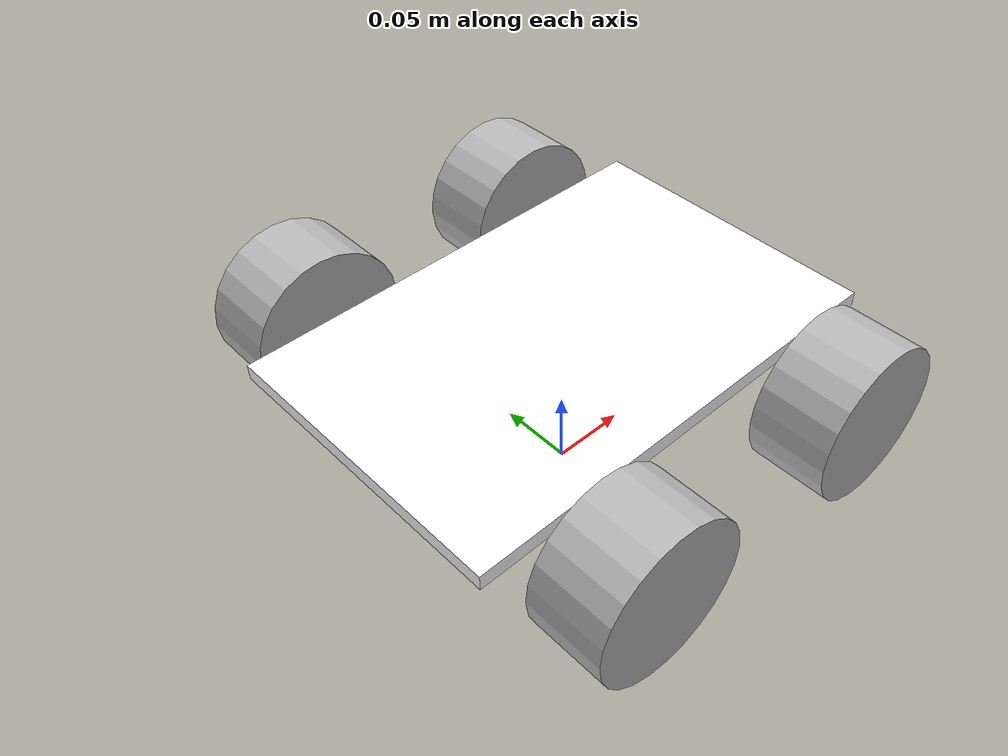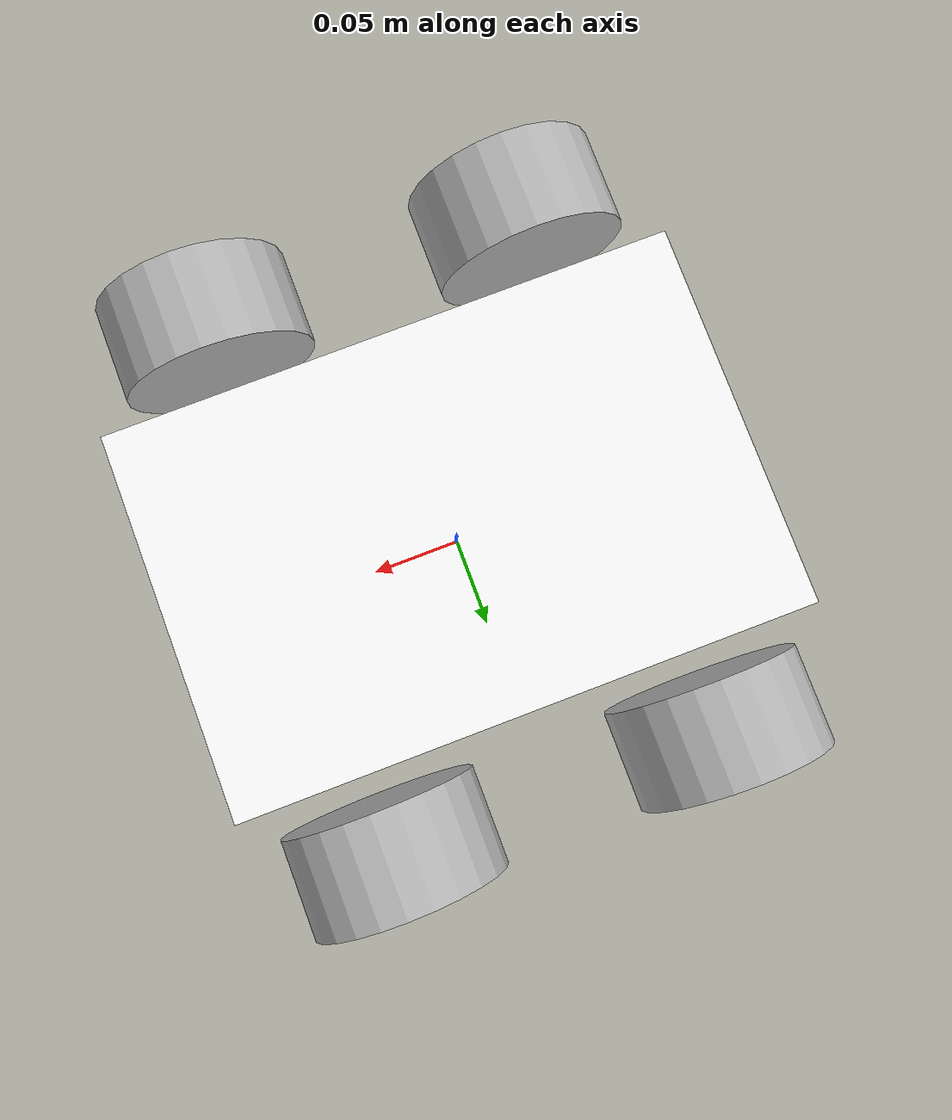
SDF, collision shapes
<?xml version="1.0" ?>

<sdf version='1.9'>
  <model name='robot'>
    <link name='base_footprint'>
      <inertial>
        <pose>0 0 0.08000000000000002 0 0 0</pose>
        <mass>20</mass>
        <inertia>
          <ixx>2.133</ixx>
          <ixy>0</ixy>
          <ixz>0</ixz>
          <iyy>4.266</iyy>
          <iyz>0</iyz>
          <izz>5.5460000000000003</izz>
        </inertia>
      </inertial>
      <collision name='base_footprint_fixed_joint_lump__base_link_collision'>
        <pose>0 0 0.105 0 0 0</pose>
        <geometry>
          <box>
            <size>0.3 0.2 0.01</size>
          </box>
        </geometry>
        <surface>
          <contact>
            <ode/>
          </contact>
          <friction>
            <ode/>
          </friction>
        </surface>
      </collision>

      <visual name='base_footprint_fixed_joint_lump__base_link_visual'>
        <pose>0 0 0.105 0 0 0</pose>
        <geometry>
          <box>
            <size>0.3 0.2 0.005</size>
          </box>
        </geometry>
        <material>
          <diffuse>1 1 1 1</diffuse>
          <ambient>1 1 1 1</ambient>
        </material>
      </visual>
      <visual name='base_footprint_fixed_joint_lump__base_link_visual_1'>
        <pose>0.1 0 0.125 0 0 0</pose>
        <geometry>
          <box>
            <size>0.07 0.076 0.03</size>
          </box>
        </geometry>
      </visual>
      <visual name='base_footprint_fixed_joint_lump__lidar_link_visual_2'>
        <pose>0.1 0 0.23 0 0 0</pose>
        <geometry>
          <cylinder>
            <length>0.070000000000000007</length>
            <radius>0.040000000000000001</radius>
          </cylinder>
        </geometry>
        <material>
          <diffuse>0 0 0 1</diffuse>
          <ambient>0 0 0 1</ambient>
        </material>
      </visual>
      <visual name='base_footprint_fixed_joint_lump__rgbd_frame_visual_3'>
        <pose>0.18 0 0.14 0 0 0</pose>
        <geometry>
          <box>
            <size>0.02 0.07 0.03</size>
          </box>
        </geometry>
        <material>
          <diffuse>1 1 1 1</diffuse>
          <ambient>1 1 1 1</ambient>
        </material>
      </visual>

      <sensor name='imu_sensor' type='imu'>
        <always_on>true</always_on>
        <update_rate>50</update_rate>
        <visualize>false</visualize>
        <topic>imu</topic>
        <imu>
          <enable_orientation>false</enable_orientation>
          <angular_velocity>
            <x>
              <noise type='gaussian'>
                <mean>0</mean>
                <stddev>0.0089999999999999993</stddev>
                <bias_mean>0.00075000000000000002</bias_mean>
                <bias_stddev>0.0050000000000000001</bias_stddev>
                <dynamic_bias_stddev>2.0000000000000002e-05</dynamic_bias_stddev>
                <dynamic_bias_correlation_time>400</dynamic_bias_correlation_time>
                <precision>0.00025000000000000001</precision>
              </noise>
            </x>
            <y>
              <noise type='gaussian'>
                <mean>0</mean>
                <stddev>0.0089999999999999993</stddev>
                <bias_mean>0.00075000000000000002</bias_mean>
                <bias_stddev>0.0050000000000000001</bias_stddev>
                <dynamic_bias_stddev>2.0000000000000002e-05</dynamic_bias_stddev>
                <dynamic_bias_correlation_time>400</dynamic_bias_correlation_time>
                <precision>0.00025000000000000001</precision>
              </noise>
            </y>
            <z>
              <noise type='gaussian'>
                <mean>0</mean>
                <stddev>0.0089999999999999993</stddev>
                <bias_mean>0.00075000000000000002</bias_mean>
                <bias_stddev>0.0050000000000000001</bias_stddev>
                <dynamic_bias_stddev>2.0000000000000002e-05</dynamic_bias_stddev>
                <dynamic_bias_correlation_time>400</dynamic_bias_correlation_time>
                <precision>0.00025000000000000001</precision>
              </noise>
            </z>
          </angular_velocity>
          <linear_acceleration>
            <x>
              <noise type='gaussian'>
                <mean>0</mean>
                <stddev>0.021000000000000001</stddev>
                <bias_mean>0.050000000000000003</bias_mean>
                <bias_stddev>0.0074999999999999997</bias_stddev>
                <dynamic_bias_stddev>0.00037500000000000001</dynamic_bias_stddev>
                <dynamic_bias_correlation_time>175</dynamic_bias_correlation_time>
                <precision>0.0050000000000000001</precision>
              </noise>
            </x>
            <y>
              <noise type='gaussian'>
                <mean>0</mean>
                <stddev>0.021000000000000001</stddev>
                <bias_mean>0.050000000000000003</bias_mean>
                <bias_stddev>0.0074999999999999997</bias_stddev>
                <dynamic_bias_stddev>0.00037500000000000001</dynamic_bias_stddev>
                <dynamic_bias_correlation_time>175</dynamic_bias_correlation_time>
                <precision>0.0050000000000000001</precision>
              </noise>
            </y>
            <z>
              <noise type='gaussian'>
                <mean>0</mean>
                <stddev>0.021000000000000001</stddev>
                <bias_mean>0.050000000000000003</bias_mean>
                <bias_stddev>0.0074999999999999997</bias_stddev>
                <dynamic_bias_stddev>0.00037500000000000001</dynamic_bias_stddev>
                <dynamic_bias_correlation_time>175</dynamic_bias_correlation_time>
                <precision>0.0050000000000000001</precision>
              </noise>
            </z>
          </linear_acceleration>
        </imu>
        <pose>0 0 0.08 0 -0 0</pose>
        <ignition_frame_id>base_link</ignition_frame_id>
      </sensor>

      <sensor name='gpu_lidar' type='gpu_lidar'>
        <update_rate>10</update_rate>
        <ray>
          <scan>
            <horizontal>
              <samples>360</samples>
              <resolution>1</resolution>
              <min_angle>-2.1000000000000001</min_angle>
              <max_angle>2.1000000000000001</max_angle>
            </horizontal>
          </scan>
          <range>
            <min>0.10000000000000001</min>
            <max>40</max>
            <resolution>0.017453</resolution>
          </range>
          <noise>
            <type>gaussian</type>
            <mean>0</mean>
            <stddev>0.01</stddev>
          </noise>
        </ray>
        <visualize>false</visualize>
        <topic>lidar</topic>
        <pose>0.1 0 0.23 0 -0 0</pose>
        <ignition_frame_id>lidar_link</ignition_frame_id>
        <alwaysOn>1</alwaysOn>
      </sensor>

      <sensor name='rgbd_camera' type='rgbd_camera'>
        <camera name='rgbd_frame'>
          <horizontal_fov>1.0471999999999999</horizontal_fov>
          <lens>
            <intrinsics>
              <fx>277.10000000000002</fx>
              <fy>277.10000000000002</fy>
              <cx>160.5</cx>
              <cy>120.5</cy>
              <s>0</s>
            </intrinsics>
            <type>stereographic</type>
            <scale_to_hfov>true</scale_to_hfov>
          </lens>
          <distortion>
            <k1>0</k1>
            <k2>0</k2>
            <k3>0</k3>
            <p1>0</p1>
            <p2>0</p2>
            <center>0.5 0.5</center>
          </distortion>
          <image>
            <width>320</width>
            <height>240</height>
            <format>R8G8B8</format>
          </image>
          <clip>
            <near>0.01</near>
            <far>300</far>
          </clip>
          <depth_camera>
            <clip>
              <near>0.10000000000000001</near>
              <far>10</far>
            </clip>
            <output>depths</output>
          </depth_camera>
          <noise>
            <type>gaussian</type>
            <mean>0</mean>
            <stddev>0.0040000000000000001</stddev>
          </noise>
        </camera>
        <always_on>true</always_on>
        <update_rate>10</update_rate>
        <visualize>false</visualize>
        <topic>depth_camera</topic>
        <pose>0.18 0 0.14 0 -0 0</pose>
        <ignition_frame_id>rgbd_frame</ignition_frame_id>
      </sensor>
    </link>
    <joint name='leftback_joint' type='revolute'>
      <pose relative_to='base_footprint'>-0.08500000000000001 0.14 0.09 -1.570796325 0 0</pose>
      <parent>base_footprint</parent>
      <child>leftback_link</child>
      <axis>
        <xyz>0 0 1</xyz>
        <limit>
          <lower>-10000000000000000</lower>
          <upper>10000000000000000</upper>
        </limit>
        <dynamics>
          <spring_reference>0</spring_reference>
          <spring_stiffness>0</spring_stiffness>
        </dynamics>
      </axis>
    </joint>
    <link name='leftback_link'>
      <pose relative_to='leftback_joint'>0 0 0 0 0 0</pose>
      <inertial>
        <pose>0 0 0 0 0 0</pose>
        <mass>0.10000000000000001</mass>
        <inertia>
          <ixx>6.0999999999999999e-05</ixx>
          <ixy>0</ixy>
          <ixz>0</ixz>
          <iyy>6.0999999999999999e-05</iyy>
          <iyz>0</iyz>
          <izz>6.0999999999999999e-05</izz>
        </inertia>
      </inertial>
      <collision name='leftback_link_collision'>
        <pose>0 0 0 0 0 0</pose>
        <geometry>
          <cylinder>
            <length>0.050000000000000003</length>
            <radius>0.050000000000000003</radius>
          </cylinder>
        </geometry>
      </collision>
      <visual name='leftback_link_visual'>
        <pose>0 0 0 -1.570796325 0 0</pose>
        <geometry>
          <mesh>
            <scale>1 0.8 1</scale>
            <uri>model://rp_nav2/meshes/right_mecanum_wheel.dae</uri>
          </mesh>
        </geometry>
      </visual>
    </link>

    <joint name='leftfront_joint' type='revolute'>
      <pose relative_to='base_footprint'>0.08500000000000001 0.14 0.09 -1.570796325 0 0</pose>
      <parent>base_footprint</parent>
      <child>leftfront_link</child>
      <axis>
        <xyz>0 0 1</xyz>
        <limit>
          <lower>-10000000000000000</lower>
          <upper>10000000000000000</upper>
        </limit>
        <dynamics>
          <spring_reference>0</spring_reference>
          <spring_stiffness>0</spring_stiffness>
        </dynamics>
      </axis>
    </joint>

    <link name='leftfront_link'>
      <pose relative_to='leftfront_joint'>0 0 0 0 0 0</pose>
      <inertial>
        <pose>0 0 0 0 0 0</pose>
        <mass>0.10000000000000001</mass>
        <inertia>
          <ixx>6.0999999999999999e-05</ixx>
          <ixy>0</ixy>
          <ixz>0</ixz>
          <iyy>6.0999999999999999e-05</iyy>
          <iyz>0</iyz>
          <izz>6.0999999999999999e-05</izz>
        </inertia>
      </inertial>
      <collision name='leftfront_link_collision'>
        <pose>0 0 0 0 0 0</pose>
        <geometry>
          <cylinder>
            <length>0.050000000000000003</length>
            <radius>0.050000000000000003</radius>
          </cylinder>
        </geometry>
      </collision>
      <visual name='leftfront_link_visual'>
        <pose>0 0 0 -1.570796325 0 0</pose>
        <geometry>
          <mesh>
            <scale>1 0.8 1</scale>
            <uri>model://rp_nav2/meshes/left_mecanum_wheel.dae</uri>
          </mesh>
        </geometry>
      </visual>
    </link>
    <joint name='rightback_joint' type='revolute'>
      <pose relative_to='base_footprint'>-0.08500000000000001 -0.14 0.09 -1.570796325 0 0</pose>
      <parent>base_footprint</parent>
      <child>rightback_link</child>
      <axis>
        <xyz>0 0 1</xyz>
        <limit>
          <lower>-10000000000000000</lower>
          <upper>10000000000000000</upper>
        </limit>
        <dynamics>
          <spring_reference>0</spring_reference>
          <spring_stiffness>0</spring_stiffness>
        </dynamics>
      </axis>
    </joint>

    <link name='rightback_link'>
      <pose relative_to='rightback_joint'>0 0 0 0 0 0</pose>
      <inertial>
        <pose>0 0 0 0 0 0</pose>
        <mass>0.10000000000000001</mass>
        <inertia>
          <ixx>6.0999999999999999e-05</ixx>
          <ixy>0</ixy>
          <ixz>0</ixz>
          <iyy>6.0999999999999999e-05</iyy>
          <iyz>0</iyz>
          <izz>6.0999999999999999e-05</izz>
        </inertia>
      </inertial>
      <collision name='rightback_link_collision'>
        <pose>0 0 0 0 0 0</pose>
        <geometry>
          <cylinder>
            <length>0.050000000000000003</length>
            <radius>0.050000000000000003</radius>
          </cylinder>
        </geometry>
      </collision>
      <visual name='rightback_link_visual'>
        <pose>0 0 0 -1.570796325 0 0</pose>
        <geometry>
          <mesh>
            <scale>1 0.8 1</scale>
            <uri>model://rp_nav2/meshes/left_mecanum_wheel.dae</uri>
          </mesh>
        </geometry>
      </visual>
    </link>

    <joint name='rightfront_joint' type='revolute'>
      <pose relative_to='base_footprint'>0.08500000000000001 -0.14 0.09 -1.570796325 0 0</pose>
      <parent>base_footprint</parent>
      <child>rightfront_link</child>
      <axis>
        <xyz>0 0 1</xyz>
        <limit>
          <lower>-10000000000000000</lower>
          <upper>10000000000000000</upper>
        </limit>
        <dynamics>
          <spring_reference>0</spring_reference>
          <spring_stiffness>0</spring_stiffness>
        </dynamics>
      </axis>
    </joint>
    <link name='rightfront_link'>
      <pose relative_to='rightfront_joint'>0 0 0 0 0 0</pose>
      <inertial>
        <pose>0 0 0 0 0 0</pose>
        <mass>0.10000000000000001</mass>
        <inertia>
          <ixx>6.0999999999999999e-05</ixx>
          <ixy>0</ixy>
          <ixz>0</ixz>
          <iyy>6.0999999999999999e-05</iyy>
          <iyz>0</iyz>
          <izz>6.0999999999999999e-05</izz>
        </inertia>
      </inertial>
      <collision name='rightfront_link_collision'>
        <pose>0 0 0 0 0 0</pose>
        <geometry>
          <cylinder>
            <length>0.050000000000000003</length>
            <radius>0.050000000000000003</radius>
          </cylinder>
        </geometry>
      </collision>
      <visual name='rightfront_link_visual'>
        <pose>0 0 0 -1.570796325 0 0</pose>
        <geometry>
          <mesh>
            <scale>1 0.8 1</scale>
            <uri>model://rp_nav2/meshes/right_mecanum_wheel.dae</uri>
          </mesh>
        </geometry>
      </visual>
    </link>

    <plugin name='ignition::gazebo::systems::MecanumDrive' filename='ignition-gazebo-mecanum-drive-system'>
      <front_left_joint>leftfront_joint</front_left_joint>
      <front_right_joint>rightfront_joint</front_right_joint>
      <back_left_joint>leftback_joint</back_left_joint>
      <back_right_joint>rightback_joint</back_right_joint>
      <wheel_separation>0.085</wheel_separation>
      <wheelbase>0.14</wheelbase>
      <wheel_radius>0.05</wheel_radius>
      <min_acceleration>-5</min_acceleration>
      <max_acceleration>5</max_acceleration>
    </plugin>

    <plugin name='ignition::gazebo::systems::OdometryPublisher' filename='ignition-gazebo-odometry-publisher-system'>
      <dimensions>3</dimensions>
      <robot_base_frame>base_footprint</robot_base_frame>
    </plugin>

    <plugin name='ignition::gazebo::systems::JointStatePublisher' filename='ignition-gazebo-joint-state-publisher-system'/>

    <frame name='lidar_joint' attached_to='base_link'>
      <pose>0.1 0 0.15 0 -0 0</pose>
    </frame>
    <frame name='lidar_link' attached_to='lidar_joint'/>
    <frame name='rgbd_joint' attached_to='base_link'>
      <pose>0.18 0 0.06 0 -0 0</pose>
    </frame>
    <frame name='rgbd_frame' attached_to='rgbd_joint'/>
    <frame name='base_joint' attached_to='base_footprint'>
      <pose>0 0 0.08 0 -0 0</pose>
    </frame>
    <frame name='base_link' attached_to='base_joint'/>
  </model>
</sdf>
